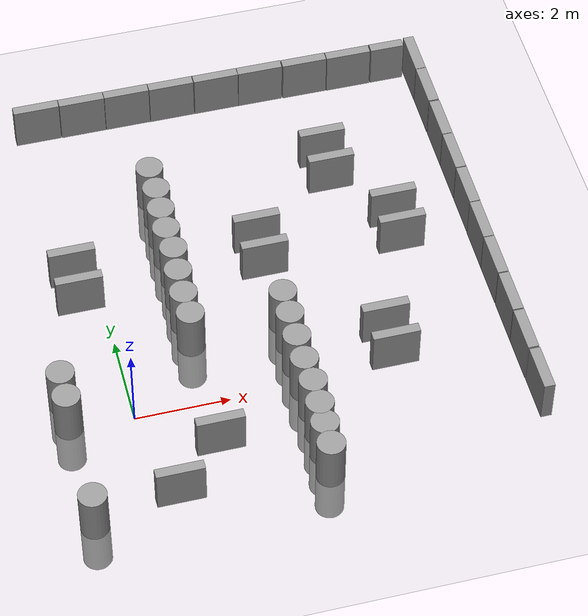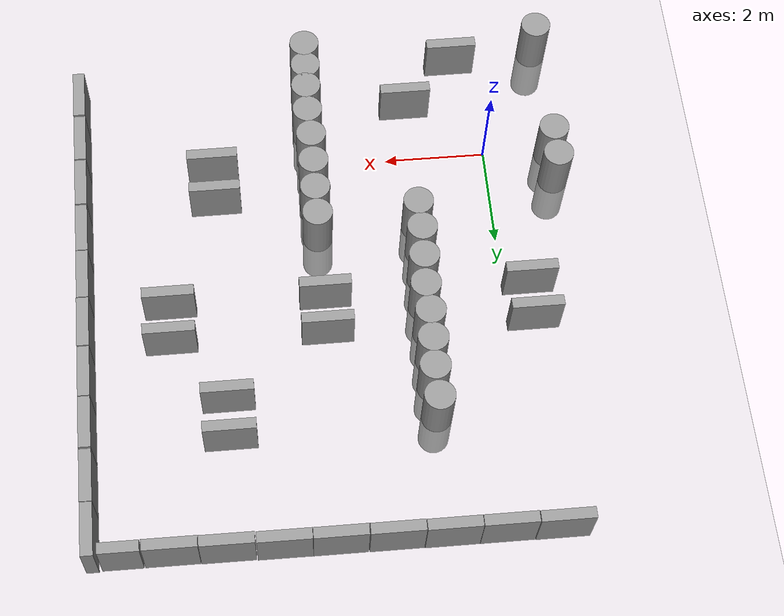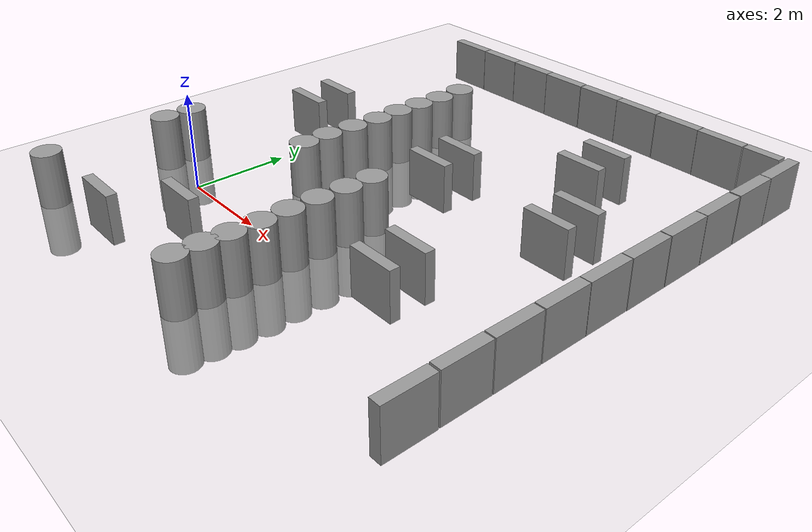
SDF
<sdf version="1.6">
 <world name="default">
  <model name="ground_plane">
   <static>1</static>
   <static>1</static>
   <link name="link">
    <collision name="collision">
     <geometry><plane><normal>0 0 1</normal><size>100 100</size></plane></geometry>
     <surface><friction><ode><mu>100</mu><mu2>50</mu2></ode></friction></surface>
    </collision>
    <visual name="visual">
     <cast_shadows>0</cast_shadows>
     <geometry><plane><normal>0 0 1</normal><size>100 100</size></plane></geometry>
     <material>
      <script><uri>file://media/materials/scripts/gazebo.material</uri><name>Gazebo/Grey</name></script>
     </material>
    </visual>
   </link>
  </model>
  <model name="unit_box_clone_6">
   <pose>-0.418678 8.11866 0.5 0 -0 0.000212</pose>
   <link name="link">
    <inertial>
     <mass>1</mass>
     <inertia>
      <ixx>0.166667</ixx>
      <ixy>0</ixy>
      <ixz>0</ixz>
      <iyy>0.166667</iyy>
      <iyz>0</iyz>
      <izz>0.166667</izz>
     </inertia>
    </inertial>
    <collision name="collision"><geometry><box><size>1 0.210541 1</size></box></geometry></collision>
    <visual name="visual">
     <geometry><box><size>1 0.210541 1</size></box></geometry>
     <material>
      <script><name>Gazebo/Grey</name><uri>file://media/materials/scripts/gazebo.material</uri></script>
     </material>
    </visual>
   </link>
  </model>
  <model name="unit_box_clone_7">
   <pose>0.592841 8.11153 0.5 0 -0 0.000212</pose>
   <link name="link">
    <inertial>
     <mass>1</mass>
     <inertia>
      <ixx>0.166667</ixx>
      <ixy>0</ixy>
      <ixz>0</ixz>
      <iyy>0.166667</iyy>
      <iyz>0</iyz>
      <izz>0.166667</izz>
     </inertia>
    </inertial>
    <collision name="collision"><geometry><box><size>1 0.210541 1</size></box></geometry></collision>
    <visual name="visual">
     <geometry><box><size>1 0.210541 1</size></box></geometry>
     <material>
      <script><name>Gazebo/Grey</name><uri>file://media/materials/scripts/gazebo.material</uri></script>
     </material>
    </visual>
   </link>
  </model>
  <model name="unit_box_clone_8">
   <pose>1.60043 8.11004 0.5 0 -0 0.000212</pose>
   <link name="link">
    <inertial>
     <mass>1</mass>
     <inertia>
      <ixx>0.166667</ixx>
      <ixy>0</ixy>
      <ixz>0</ixz>
      <iyy>0.166667</iyy>
      <iyz>0</iyz>
      <izz>0.166667</izz>
     </inertia>
    </inertial>
    <collision name="collision"><geometry><box><size>1 0.210541 1</size></box></geometry></collision>
    <visual name="visual">
     <geometry><box><size>1 0.210541 1</size></box></geometry>
     <material>
      <script><name>Gazebo/Grey</name><uri>file://media/materials/scripts/gazebo.material</uri></script>
     </material>
    </visual>
   </link>
  </model>
  <model name="unit_box_clone_9">
   <pose>2.60987 8.10285 0.5 0 -0 0.000212</pose>
   <link name="link">
    <inertial>
     <mass>1</mass>
     <inertia>
      <ixx>0.166667</ixx>
      <ixy>0</ixy>
      <ixz>0</ixz>
      <iyy>0.166667</iyy>
      <iyz>0</iyz>
      <izz>0.166667</izz>
     </inertia>
    </inertial>
    <collision name="collision"><geometry><box><size>1 0.210541 1</size></box></geometry></collision>
    <visual name="visual">
     <geometry><box><size>1 0.210541 1</size></box></geometry>
     <material>
      <script><name>Gazebo/Grey</name><uri>file://media/materials/scripts/gazebo.material</uri></script>
     </material>
    </visual>
   </link>
  </model>
  <model name="unit_box_clone_10">
   <pose>3.62649 8.09926 0.5 0 -0 0.000212</pose>
   <link name="link">
    <inertial>
     <mass>1</mass>
     <inertia>
      <ixx>0.166667</ixx>
      <ixy>0</ixy>
      <ixz>0</ixz>
      <iyy>0.166667</iyy>
      <iyz>0</iyz>
      <izz>0.166667</izz>
     </inertia>
    </inertial>
    <collision name="collision"><geometry><box><size>1 0.210541 1</size></box></geometry></collision>
    <visual name="visual">
     <geometry><box><size>1 0.210541 1</size></box></geometry>
     <material>
      <script><name>Gazebo/Grey</name><uri>file://media/materials/scripts/gazebo.material</uri></script>
     </material>
    </visual>
   </link>
  </model>
  <model name="unit_box_clone_11">
   <pose>4.6331 8.09534 0.5 -0 -0 -0.002941</pose>
   <link name="link">
    <inertial>
     <mass>1</mass>
     <inertia>
      <ixx>0.166667</ixx>
      <ixy>0</ixy>
      <ixz>0</ixz>
      <iyy>0.166667</iyy>
      <iyz>0</iyz>
      <izz>0.166667</izz>
     </inertia>
    </inertial>
    <collision name="collision"><geometry><box><size>1 0.210541 1</size></box></geometry></collision>
    <visual name="visual">
     <geometry><box><size>1 0.210541 1</size></box></geometry>
     <material>
      <script><name>Gazebo/Grey</name><uri>file://media/materials/scripts/gazebo.material</uri></script>
     </material>
    </visual>
   </link>
  </model>
  <model name="unit_box_0_clone_0">
   <pose>8.11522 6.68459 0.5 -0 -0 -0.000409</pose>
   <link name="link">
    <inertial>
     <mass>1</mass>
     <inertia>
      <ixx>0.166667</ixx>
      <ixy>0</ixy>
      <ixz>0</ixz>
      <iyy>0.166667</iyy>
      <iyz>0</iyz>
      <izz>0.166667</izz>
     </inertia>
    </inertial>
    <collision name="collision"><geometry><box><size>0.230819 1 1</size></box></geometry></collision>
    <visual name="visual">
     <geometry><box><size>0.230819 1 1</size></box></geometry>
     <material>
      <script><name>Gazebo/Grey</name><uri>file://media/materials/scripts/gazebo.material</uri></script>
     </material>
    </visual>
   </link>
  </model>
  <model name="unit_box_0_clone_1">
   <pose>8.11915 5.6517 0.5 0 -0 0.000288</pose>
   <link name="link">
    <inertial>
     <mass>1</mass>
     <inertia>
      <ixx>0.166667</ixx>
      <ixy>0</ixy>
      <ixz>0</ixz>
      <iyy>0.166667</iyy>
      <iyz>0</iyz>
      <izz>0.166667</izz>
     </inertia>
    </inertial>
    <collision name="collision"><geometry><box><size>0.230819 1 1</size></box></geometry></collision>
    <visual name="visual">
     <geometry><box><size>0.230819 1 1</size></box></geometry>
     <material>
      <script><name>Gazebo/Grey</name><uri>file://media/materials/scripts/gazebo.material</uri></script>
     </material>
    </visual>
   </link>
  </model>
  <model name="unit_box_0_clone_2">
   <pose>8.11914 4.64016 0.5 0 -0 0.000304</pose>
   <link name="link">
    <inertial>
     <mass>1</mass>
     <inertia>
      <ixx>0.166667</ixx>
      <ixy>0</ixy>
      <ixz>0</ixz>
      <iyy>0.166667</iyy>
      <iyz>0</iyz>
      <izz>0.166667</izz>
     </inertia>
    </inertial>
    <collision name="collision"><geometry><box><size>0.230819 1 1</size></box></geometry></collision>
    <visual name="visual">
     <geometry><box><size>0.230819 1 1</size></box></geometry>
     <material>
      <script><name>Gazebo/Grey</name><uri>file://media/materials/scripts/gazebo.material</uri></script>
     </material>
    </visual>
   </link>
  </model>
  <model name="unit_box_0_clone_3">
   <pose>8.11914 3.62226 0.5 0 -0 -1.6e-05</pose>
   <link name="link">
    <inertial>
     <mass>1</mass>
     <inertia>
      <ixx>0.166667</ixx>
      <ixy>0</ixy>
      <ixz>0</ixz>
      <iyy>0.166667</iyy>
      <iyz>0</iyz>
      <izz>0.166667</izz>
     </inertia>
    </inertial>
    <collision name="collision"><geometry><box><size>0.230819 1 1</size></box></geometry></collision>
    <visual name="visual">
     <geometry><box><size>0.230819 1 1</size></box></geometry>
     <material>
      <script><name>Gazebo/Grey</name><uri>file://media/materials/scripts/gazebo.material</uri></script>
     </material>
    </visual>
   </link>
  </model>
  <model name="unit_box_0_clone_4">
   <pose>8.11332 2.61062 0.5 0 0 -0.001482</pose>
   <link name="link">
    <inertial>
     <mass>1</mass>
     <inertia>
      <ixx>0.166667</ixx>
      <ixy>0</ixy>
      <ixz>0</ixz>
      <iyy>0.166667</iyy>
      <iyz>0</iyz>
      <izz>0.166667</izz>
     </inertia>
    </inertial>
    <collision name="collision"><geometry><box><size>0.230819 1 1</size></box></geometry></collision>
    <visual name="visual">
     <geometry><box><size>0.230819 1 1</size></box></geometry>
     <material>
      <script><name>Gazebo/Grey</name><uri>file://media/materials/scripts/gazebo.material</uri></script>
     </material>
    </visual>
   </link>
  </model>
  <model name="unit_box_0_clone_5">
   <pose>8.11277 1.59919 0.5 0 -0 -1.6e-05</pose>
   <link name="link">
    <inertial>
     <mass>1</mass>
     <inertia>
      <ixx>0.166667</ixx>
      <ixy>0</ixy>
      <ixz>0</ixz>
      <iyy>0.166667</iyy>
      <iyz>0</iyz>
      <izz>0.166667</izz>
     </inertia>
    </inertial>
    <collision name="collision"><geometry><box><size>0.230819 1 1</size></box></geometry></collision>
    <visual name="visual">
     <geometry><box><size>0.230819 1 1</size></box></geometry>
     <material>
      <script><name>Gazebo/Grey</name><uri>file://media/materials/scripts/gazebo.material</uri></script>
     </material>
    </visual>
   </link>
  </model>
  <model name="unit_box_0_clone_6">
   <pose>8.11277 0.574929 0.5 0 -0 -1.6e-05</pose>
   <link name="link">
    <inertial>
     <mass>1</mass>
     <inertia>
      <ixx>0.166667</ixx>
      <ixy>0</ixy>
      <ixz>0</ixz>
      <iyy>0.166667</iyy>
      <iyz>0</iyz>
      <izz>0.166667</izz>
     </inertia>
    </inertial>
    <collision name="collision"><geometry><box><size>0.230819 1 1</size></box></geometry></collision>
    <visual name="visual">
     <geometry><box><size>0.230819 1 1</size></box></geometry>
     <material>
      <script><name>Gazebo/Grey</name><uri>file://media/materials/scripts/gazebo.material</uri></script>
     </material>
    </visual>
   </link>
  </model>
  <model name="unit_box_0_clone_7">
   <pose>8.11276 -0.449329 0.5 0 -0 -1.6e-05</pose>
   <link name="link">
    <inertial>
     <mass>1</mass>
     <inertia>
      <ixx>0.166667</ixx>
      <ixy>0</ixy>
      <ixz>0</ixz>
      <iyy>0.166667</iyy>
      <iyz>0</iyz>
      <izz>0.166667</izz>
     </inertia>
    </inertial>
    <collision name="collision"><geometry><box><size>0.230819 1 1</size></box></geometry></collision>
    <visual name="visual">
     <geometry><box><size>0.230819 1 1</size></box></geometry>
     <material>
      <script><name>Gazebo/Grey</name><uri>file://media/materials/scripts/gazebo.material</uri></script>
     </material>
    </visual>
   </link>
  </model>
  <model name="unit_box_0_clone_8">
   <pose>8.11912 -1.48631 0.5 0 -0 -1.6e-05</pose>
   <link name="link">
    <inertial>
     <mass>1</mass>
     <inertia>
      <ixx>0.166667</ixx>
      <ixy>0</ixy>
      <ixz>0</ixz>
      <iyy>0.166667</iyy>
      <iyz>0</iyz>
      <izz>0.166667</izz>
     </inertia>
    </inertial>
    <collision name="collision"><geometry><box><size>0.230819 1 1</size></box></geometry></collision>
    <visual name="visual">
     <geometry><box><size>0.230819 1 1</size></box></geometry>
     <material>
      <script><name>Gazebo/Grey</name><uri>file://media/materials/scripts/gazebo.material</uri></script>
     </material>
    </visual>
   </link>
  </model>
  <model name="unit_box_0_clone_0_clone">
   <pose>8.11438 7.69322 0.5 0 -0 0.00027</pose>
   <link name="link">
    <inertial>
     <mass>1</mass>
     <inertia>
      <ixx>0.166667</ixx>
      <ixy>0</ixy>
      <ixz>0</ixz>
      <iyy>0.166667</iyy>
      <iyz>0</iyz>
      <izz>0.166667</izz>
     </inertia>
    </inertial>
    <collision name="collision"><geometry><box><size>0.230819 1 1</size></box></geometry></collision>
    <visual name="visual">
     <geometry><box><size>0.230819 1 1</size></box></geometry>
     <material>
      <script><name>Gazebo/Grey</name><uri>file://media/materials/scripts/gazebo.material</uri></script>
     </material>
    </visual>
   </link>
  </model>
  <model name="unit_box_clone_11_clone">
   <pose>5.65439 8.08313 0.5 -0 -0 -0.003132</pose>
   <link name="link">
    <inertial>
     <mass>1</mass>
     <inertia>
      <ixx>0.166667</ixx>
      <ixy>0</ixy>
      <ixz>0</ixz>
      <iyy>0.166667</iyy>
      <iyz>0</iyz>
      <izz>0.166667</izz>
     </inertia>
    </inertial>
    <collision name="collision"><geometry><box><size>1 0.210541 1</size></box></geometry></collision>
    <visual name="visual">
     <geometry><box><size>1 0.210541 1</size></box></geometry>
     <material>
      <script><name>Gazebo/Grey</name><uri>file://media/materials/scripts/gazebo.material</uri></script>
     </material>
    </visual>
   </link>
  </model>
  <model name="unit_box_clone_11_clone_0">
   <pose>6.66439 8.07334 0.5 0 0 -0.002912</pose>
   <link name="link">
    <inertial>
     <mass>1</mass>
     <inertia>
      <ixx>0.166667</ixx>
      <ixy>0</ixy>
      <ixz>0</ixz>
      <iyy>0.166667</iyy>
      <iyz>0</iyz>
      <izz>0.166667</izz>
     </inertia>
    </inertial>
    <collision name="collision"><geometry><box><size>1 0.210541 1</size></box></geometry></collision>
    <visual name="visual">
     <geometry><box><size>1 0.210541 1</size></box></geometry>
     <material>
      <script><name>Gazebo/Grey</name><uri>file://media/materials/scripts/gazebo.material</uri></script>
     </material>
    </visual>
   </link>
  </model>
  <model name="unit_box_clone_11_clone_1_clone">
   <pose>7.56437 8.07322 0.499997 -2e-06 -7e-06 -0.00342</pose>
   <link name="link">
    <inertial>
     <mass>1</mass>
     <inertia>
      <ixx>0.166667</ixx>
      <ixy>0</ixy>
      <ixz>0</ixz>
      <iyy>0.166667</iyy>
      <iyz>0</iyz>
      <izz>0.166667</izz>
     </inertia>
    </inertial>
    <collision name="collision"><geometry><box><size>0.750223 0.210541 1</size></box></geometry></collision>
    <visual name="visual">
     <geometry><box><size>0.750223 0.210541 1</size></box></geometry>
     <material>
      <script><name>Gazebo/Grey</name><uri>file://media/materials/scripts/gazebo.material</uri></script>
     </material>
    </visual>
   </link>
  </model>
  <model name="unit_cylinder_153_clone_clone_5_clone_clone_13_clone_0_clone_29_clone_32_clone_0_clone_4_clone_46_clone_42_clone_clone_clone_4_clone_2_clone_29_clone">
   <static>1</static>
   <pose>-1.33788 0.711735 0 0 -0 0</pose>
   <link name="link">
    <inertial>
     <mass>1</mass>
     <inertia><ixx>0.145833</ixx><ixy>0</ixy><ixz>0</ixz><iyy>0.145833</iyy><iyz>0</iyz><izz>0.125</izz></inertia>
    </inertial>
    <collision name="collision">
     <geometry><cylinder><radius>0.295479</radius><length>2.18667</length></cylinder></geometry>
    </collision>
    <visual name="visual">
     <geometry><cylinder><radius>0.295479</radius><length>2.18667</length></cylinder></geometry>
     <material>
      <script><name>Gazebo/Grey</name><uri>file://media/materials/scripts/gazebo.material</uri></script>
     </material>
    </visual>
   </link>
  </model>
  <model name="unit_cylinder_153_clone_clone_5_clone_clone_13_clone_0_clone_29_clone_32_clone_0_clone_4_clone_46_clone_42_clone_clone_clone_4_clone_2_clone_29_clone_0">
   <static>1</static>
   <pose>-1.33788 0.103789 0 0 -0 0</pose>
   <link name="link">
    <inertial>
     <mass>1</mass>
     <inertia><ixx>0.145833</ixx><ixy>0</ixy><ixz>0</ixz><iyy>0.145833</iyy><iyz>0</iyz><izz>0.125</izz></inertia>
    </inertial>
    <collision name="collision">
     <geometry><cylinder><radius>0.295479</radius><length>2.18667</length></cylinder></geometry>
    </collision>
    <visual name="visual">
     <geometry><cylinder><radius>0.295479</radius><length>2.18667</length></cylinder></geometry>
     <material>
      <script><name>Gazebo/Grey</name><uri>file://media/materials/scripts/gazebo.material</uri></script>
     </material>
    </visual>
   </link>
  </model>
  <model name="unit_cylinder_153_clone_clone_5_clone_clone_13_clone_0_clone_29_clone_32_clone_0_clone_4_clone_46_clone_42_clone_clone_clone_4_clone_2_clone_29_clone_4">
   <static>1</static>
   <pose>-1.31809 -2.38905 0 0 -0 0</pose>
   <link name="link">
    <inertial>
     <mass>1</mass>
     <inertia><ixx>0.145833</ixx><ixy>0</ixy><ixz>0</ixz><iyy>0.145833</iyy><iyz>0</iyz><izz>0.125</izz></inertia>
    </inertial>
    <collision name="collision">
     <geometry><cylinder><radius>0.295479</radius><length>2.18667</length></cylinder></geometry>
    </collision>
    <visual name="visual">
     <geometry><cylinder><radius>0.295479</radius><length>2.18667</length></cylinder></geometry>
     <material>
      <script><name>Gazebo/Grey</name><uri>file://media/materials/scripts/gazebo.material</uri></script>
     </material>
    </visual>
   </link>
  </model>
  <model name="unit_cylinder_153_clone_clone_5_clone_clone_13_clone_0_clone_29_clone_32_clone_0_clone_4_clone_46_clone_42_clone_clone_clone_4_clone_2_clone_29_clone_10">
   <static>1</static>
   <pose>1.60145 5.68902 0 0 -0 0</pose>
   <link name="link">
    <inertial>
     <mass>1</mass>
     <inertia><ixx>0.145833</ixx><ixy>0</ixy><ixz>0</ixz><iyy>0.145833</iyy><iyz>0</iyz><izz>0.125</izz></inertia>
    </inertial>
    <collision name="collision">
     <geometry><cylinder><radius>0.295479</radius><length>2.18667</length></cylinder></geometry>
    </collision>
    <visual name="visual">
     <geometry><cylinder><radius>0.295479</radius><length>2.18667</length></cylinder></geometry>
     <material>
      <script><name>Gazebo/Grey</name><uri>file://media/materials/scripts/gazebo.material</uri></script>
     </material>
    </visual>
   </link>
  </model>
  <model name="unit_cylinder_153_clone_clone_5_clone_clone_13_clone_0_clone_29_clone_32_clone_0_clone_4_clone_46_clone_42_clone_clone_clone_4_clone_2_clone_29_clone_11">
   <static>1</static>
   <pose>1.61502 5.07811 0 0 -0 0</pose>
   <link name="link">
    <inertial>
     <mass>1</mass>
     <inertia><ixx>0.145833</ixx><ixy>0</ixy><ixz>0</ixz><iyy>0.145833</iyy><iyz>0</iyz><izz>0.125</izz></inertia>
    </inertial>
    <collision name="collision">
     <geometry><cylinder><radius>0.295479</radius><length>2.18667</length></cylinder></geometry>
    </collision>
    <visual name="visual">
     <geometry><cylinder><radius>0.295479</radius><length>2.18667</length></cylinder></geometry>
     <material>
      <script><name>Gazebo/Grey</name><uri>file://media/materials/scripts/gazebo.material</uri></script>
     </material>
    </visual>
   </link>
  </model>
  <model name="unit_cylinder_153_clone_clone_5_clone_clone_13_clone_0_clone_29_clone_32_clone_0_clone_4_clone_46_clone_42_clone_clone_clone_4_clone_2_clone_29_clone_12">
   <static>1</static>
   <pose>1.58787 4.50793 0 0 -0 0</pose>
   <link name="link">
    <inertial>
     <mass>1</mass>
     <inertia><ixx>0.145833</ixx><ixy>0</ixy><ixz>0</ixz><iyy>0.145833</iyy><iyz>0</iyz><izz>0.125</izz></inertia>
    </inertial>
    <collision name="collision">
     <geometry><cylinder><radius>0.295479</radius><length>2.18667</length></cylinder></geometry>
    </collision>
    <visual name="visual">
     <geometry><cylinder><radius>0.295479</radius><length>2.18667</length></cylinder></geometry>
     <material>
      <script><name>Gazebo/Grey</name><uri>file://media/materials/scripts/gazebo.material</uri></script>
     </material>
    </visual>
   </link>
  </model>
  <model name="unit_cylinder_153_clone_clone_5_clone_clone_13_clone_0_clone_29_clone_32_clone_0_clone_4_clone_46_clone_42_clone_clone_clone_4_clone_2_clone_29_clone_13">
   <static>1</static>
   <pose>1.57429 3.93776 0 0 -0 0</pose>
   <link name="link">
    <inertial>
     <mass>1</mass>
     <inertia><ixx>0.145833</ixx><ixy>0</ixy><ixz>0</ixz><iyy>0.145833</iyy><iyz>0</iyz><izz>0.125</izz></inertia>
    </inertial>
    <collision name="collision">
     <geometry><cylinder><radius>0.295479</radius><length>2.18667</length></cylinder></geometry>
    </collision>
    <visual name="visual">
     <geometry><cylinder><radius>0.295479</radius><length>2.18667</length></cylinder></geometry>
     <material>
      <script><name>Gazebo/Grey</name><uri>file://media/materials/scripts/gazebo.material</uri></script>
     </material>
    </visual>
   </link>
  </model>
  <model name="unit_cylinder_153_clone_clone_5_clone_clone_13_clone_0_clone_29_clone_32_clone_0_clone_4_clone_46_clone_42_clone_clone_clone_4_clone_2_clone_29_clone_14">
   <static>1</static>
   <pose>1.60144 3.36758 0 0 -0 0</pose>
   <link name="link">
    <inertial>
     <mass>1</mass>
     <inertia><ixx>0.145833</ixx><ixy>0</ixy><ixz>0</ixz><iyy>0.145833</iyy><iyz>0</iyz><izz>0.125</izz></inertia>
    </inertial>
    <collision name="collision">
     <geometry><cylinder><radius>0.295479</radius><length>2.18667</length></cylinder></geometry>
    </collision>
    <visual name="visual">
     <geometry><cylinder><radius>0.295479</radius><length>2.18667</length></cylinder></geometry>
     <material>
      <script><name>Gazebo/Grey</name><uri>file://media/materials/scripts/gazebo.material</uri></script>
     </material>
    </visual>
   </link>
  </model>
  <model name="unit_cylinder_153_clone_clone_5_clone_clone_13_clone_0_clone_29_clone_32_clone_0_clone_4_clone_46_clone_42_clone_clone_clone_4_clone_2_clone_29_clone_15">
   <static>1</static>
   <pose>1.56071 2.75667 0 0 -0 0</pose>
   <link name="link">
    <inertial>
     <mass>1</mass>
     <inertia><ixx>0.145833</ixx><ixy>0</ixy><ixz>0</ixz><iyy>0.145833</iyy><iyz>0</iyz><izz>0.125</izz></inertia>
    </inertial>
    <collision name="collision">
     <geometry><cylinder><radius>0.295479</radius><length>2.18667</length></cylinder></geometry>
    </collision>
    <visual name="visual">
     <geometry><cylinder><radius>0.295479</radius><length>2.18667</length></cylinder></geometry>
     <material>
      <script><name>Gazebo/Grey</name><uri>file://media/materials/scripts/gazebo.material</uri></script>
     </material>
    </visual>
   </link>
  </model>
  <model name="unit_cylinder_153_clone_clone_5_clone_clone_13_clone_0_clone_29_clone_32_clone_0_clone_4_clone_46_clone_42_clone_clone_clone_4_clone_2_clone_29_clone_16">
   <static>1</static>
   <pose>1.53355 2.14576 0 0 -0 0</pose>
   <link name="link">
    <inertial>
     <mass>1</mass>
     <inertia><ixx>0.145833</ixx><ixy>0</ixy><ixz>0</ixz><iyy>0.145833</iyy><iyz>0</iyz><izz>0.125</izz></inertia>
    </inertial>
    <collision name="collision">
     <geometry><cylinder><radius>0.295479</radius><length>2.18667</length></cylinder></geometry>
    </collision>
    <visual name="visual">
     <geometry><cylinder><radius>0.295479</radius><length>2.18667</length></cylinder></geometry>
     <material>
      <script><name>Gazebo/Grey</name><uri>file://media/materials/scripts/gazebo.material</uri></script>
     </material>
    </visual>
   </link>
  </model>
  <model name="unit_cylinder_153_clone_clone_5_clone_clone_13_clone_0_clone_29_clone_32_clone_0_clone_4_clone_46_clone_42_clone_clone_clone_4_clone_2_clone_29_clone_17">
   <static>1</static>
   <pose>1.54713 1.57559 0 0 -0 0</pose>
   <link name="link">
    <inertial>
     <mass>1</mass>
     <inertia><ixx>0.145833</ixx><ixy>0</ixy><ixz>0</ixz><iyy>0.145833</iyy><iyz>0</iyz><izz>0.125</izz></inertia>
    </inertial>
    <collision name="collision">
     <geometry><cylinder><radius>0.295479</radius><length>2.18667</length></cylinder></geometry>
    </collision>
    <visual name="visual">
     <geometry><cylinder><radius>0.295479</radius><length>2.18667</length></cylinder></geometry>
     <material>
      <script><name>Gazebo/Grey</name><uri>file://media/materials/scripts/gazebo.material</uri></script>
     </material>
    </visual>
   </link>
  </model>
  <model name="unit_cylinder_153_clone_clone_5_clone_clone_13_clone_0_clone_29_clone_32_clone_0_clone_4_clone_46_clone_42_clone_clone_clone_4_clone_2_clone_29_clone_18">
   <static>1</static>
   <pose>3.52918 1.6706 0 0 -0 0</pose>
   <link name="link">
    <inertial>
     <mass>1</mass>
     <inertia><ixx>0.145833</ixx><ixy>0</ixy><ixz>0</ixz><iyy>0.145833</iyy><iyz>0</iyz><izz>0.125</izz></inertia>
    </inertial>
    <collision name="collision">
     <geometry><cylinder><radius>0.295479</radius><length>2.18667</length></cylinder></geometry>
    </collision>
    <visual name="visual">
     <geometry><cylinder><radius>0.295479</radius><length>2.18667</length></cylinder></geometry>
     <material>
      <script><name>Gazebo/Grey</name><uri>file://media/materials/scripts/gazebo.material</uri></script>
     </material>
    </visual>
   </link>
  </model>
  <model name="unit_cylinder_153_clone_clone_5_clone_clone_13_clone_0_clone_29_clone_32_clone_0_clone_4_clone_46_clone_42_clone_clone_clone_4_clone_2_clone_29_clone_19">
   <static>1</static>
   <pose>3.52917 1.08685 0 0 -0 0</pose>
   <link name="link">
    <inertial>
     <mass>1</mass>
     <inertia><ixx>0.145833</ixx><ixy>0</ixy><ixz>0</ixz><iyy>0.145833</iyy><iyz>0</iyz><izz>0.125</izz></inertia>
    </inertial>
    <collision name="collision">
     <geometry><cylinder><radius>0.295479</radius><length>2.18667</length></cylinder></geometry>
    </collision>
    <visual name="visual">
     <geometry><cylinder><radius>0.295479</radius><length>2.18667</length></cylinder></geometry>
     <material>
      <script><name>Gazebo/Grey</name><uri>file://media/materials/scripts/gazebo.material</uri></script>
     </material>
    </visual>
   </link>
  </model>
  <model name="unit_cylinder_153_clone_clone_5_clone_clone_13_clone_0_clone_29_clone_32_clone_0_clone_4_clone_46_clone_42_clone_clone_clone_4_clone_2_clone_29_clone_20">
   <static>1</static>
   <pose>3.51559 0.475946 0 0 -0 0</pose>
   <link name="link">
    <inertial>
     <mass>1</mass>
     <inertia><ixx>0.145833</ixx><ixy>0</ixy><ixz>0</ixz><iyy>0.145833</iyy><iyz>0</iyz><izz>0.125</izz></inertia>
    </inertial>
    <collision name="collision">
     <geometry><cylinder><radius>0.295479</radius><length>2.18667</length></cylinder></geometry>
    </collision>
    <visual name="visual">
     <geometry><cylinder><radius>0.295479</radius><length>2.18667</length></cylinder></geometry>
     <material>
      <script><name>Gazebo/Grey</name><uri>file://media/materials/scripts/gazebo.material</uri></script>
     </material>
    </visual>
   </link>
  </model>
  <model name="unit_cylinder_153_clone_clone_5_clone_clone_13_clone_0_clone_29_clone_32_clone_0_clone_4_clone_46_clone_42_clone_clone_clone_4_clone_2_clone_29_clone_21">
   <static>1</static>
   <pose>3.51559 -0.13496 0 0 -0 0</pose>
   <link name="link">
    <inertial>
     <mass>1</mass>
     <inertia><ixx>0.145833</ixx><ixy>0</ixy><ixz>0</ixz><iyy>0.145833</iyy><iyz>0</iyz><izz>0.125</izz></inertia>
    </inertial>
    <collision name="collision">
     <geometry><cylinder><radius>0.295479</radius><length>2.18667</length></cylinder></geometry>
    </collision>
    <visual name="visual">
     <geometry><cylinder><radius>0.295479</radius><length>2.18667</length></cylinder></geometry>
     <material>
      <script><name>Gazebo/Grey</name><uri>file://media/materials/scripts/gazebo.material</uri></script>
     </material>
    </visual>
   </link>
  </model>
  <model name="unit_cylinder_153_clone_clone_5_clone_clone_13_clone_0_clone_29_clone_32_clone_0_clone_4_clone_46_clone_42_clone_clone_clone_4_clone_2_clone_29_clone_22">
   <static>1</static>
   <pose>3.54274 -0.718716 0 0 -0 0</pose>
   <link name="link">
    <inertial>
     <mass>1</mass>
     <inertia><ixx>0.145833</ixx><ixy>0</ixy><ixz>0</ixz><iyy>0.145833</iyy><iyz>0</iyz><izz>0.125</izz></inertia>
    </inertial>
    <collision name="collision">
     <geometry><cylinder><radius>0.295479</radius><length>2.18667</length></cylinder></geometry>
    </collision>
    <visual name="visual">
     <geometry><cylinder><radius>0.295479</radius><length>2.18667</length></cylinder></geometry>
     <material>
      <script><name>Gazebo/Grey</name><uri>file://media/materials/scripts/gazebo.material</uri></script>
     </material>
    </visual>
   </link>
  </model>
  <model name="unit_cylinder_153_clone_clone_5_clone_clone_13_clone_0_clone_29_clone_32_clone_0_clone_4_clone_46_clone_42_clone_clone_clone_4_clone_2_clone_29_clone_23">
   <static>1</static>
   <pose>3.52916 -1.28889 0 0 -0 0</pose>
   <link name="link">
    <inertial>
     <mass>1</mass>
     <inertia><ixx>0.145833</ixx><ixy>0</ixy><ixz>0</ixz><iyy>0.145833</iyy><iyz>0</iyz><izz>0.125</izz></inertia>
    </inertial>
    <collision name="collision">
     <geometry><cylinder><radius>0.295479</radius><length>2.18667</length></cylinder></geometry>
    </collision>
    <visual name="visual">
     <geometry><cylinder><radius>0.295479</radius><length>2.18667</length></cylinder></geometry>
     <material>
      <script><name>Gazebo/Grey</name><uri>file://media/materials/scripts/gazebo.material</uri></script>
     </material>
    </visual>
   </link>
  </model>
  <model name="unit_cylinder_153_clone_clone_5_clone_clone_13_clone_0_clone_29_clone_32_clone_0_clone_4_clone_46_clone_42_clone_clone_clone_4_clone_2_clone_29_clone_24">
   <static>1</static>
   <pose>3.50201 -1.79119 0 0 -0 0</pose>
   <link name="link">
    <inertial>
     <mass>1</mass>
     <inertia><ixx>0.145833</ixx><ixy>0</ixy><ixz>0</ixz><iyy>0.145833</iyy><iyz>0</iyz><izz>0.125</izz></inertia>
    </inertial>
    <collision name="collision">
     <geometry><cylinder><radius>0.295479</radius><length>2.18667</length></cylinder></geometry>
    </collision>
    <visual name="visual">
     <geometry><cylinder><radius>0.295479</radius><length>2.18667</length></cylinder></geometry>
     <material>
      <script><name>Gazebo/Grey</name><uri>file://media/materials/scripts/gazebo.material</uri></script>
     </material>
    </visual>
   </link>
  </model>
  <model name="unit_cylinder_153_clone_clone_5_clone_clone_13_clone_0_clone_29_clone_32_clone_0_clone_4_clone_46_clone_42_clone_clone_clone_4_clone_2_clone_29_clone_25">
   <static>1</static>
   <pose>3.48843 -2.32064 0 0 -0 0</pose>
   <link name="link">
    <inertial>
     <mass>1</mass>
     <inertia><ixx>0.145833</ixx><ixy>0</ixy><ixz>0</ixz><iyy>0.145833</iyy><iyz>0</iyz><izz>0.125</izz></inertia>
    </inertial>
    <collision name="collision">
     <geometry><cylinder><radius>0.295479</radius><length>2.18667</length></cylinder></geometry>
    </collision>
    <visual name="visual">
     <geometry><cylinder><radius>0.295479</radius><length>2.18667</length></cylinder></geometry>
     <material>
      <script><name>Gazebo/Grey</name><uri>file://media/materials/scripts/gazebo.material</uri></script>
     </material>
    </visual>
   </link>
  </model>
  <model name="unit_box_clone_9_clone">
   <pose>1.52688 -1.11946 0.5 0 -0 0.00013</pose>
   <link name="link">
    <inertial>
     <mass>1</mass>
     <inertia>
      <ixx>0.166667</ixx>
      <ixy>0</ixy>
      <ixz>0</ixz>
      <iyy>0.166667</iyy>
      <iyz>0</iyz>
      <izz>0.166667</izz>
     </inertia>
    </inertial>
    <collision name="collision"><geometry><box><size>1 0.210541 1</size></box></geometry></collision>
    <visual name="visual">
     <geometry><box><size>1 0.210541 1</size></box></geometry>
     <material>
      <script><name>Gazebo/Grey</name><uri>file://media/materials/scripts/gazebo.material</uri></script>
     </material>
    </visual>
   </link>
  </model>
  <model name="unit_box_clone_9_clone_0">
   <pose>0.472108 -2.14463 0.5 0 -0 0.000116</pose>
   <link name="link">
    <inertial>
     <mass>1</mass>
     <inertia>
      <ixx>0.166667</ixx>
      <ixy>0</ixy>
      <ixz>0</ixz>
      <iyy>0.166667</iyy>
      <iyz>0</iyz>
      <izz>0.166667</izz>
     </inertia>
    </inertial>
    <collision name="collision"><geometry><box><size>1 0.210541 1</size></box></geometry></collision>
    <visual name="visual">
     <geometry><box><size>1 0.210541 1</size></box></geometry>
     <material>
      <script><name>Gazebo/Grey</name><uri>file://media/materials/scripts/gazebo.material</uri></script>
     </material>
    </visual>
   </link>
  </model>
  <model name="unit_box_clone_9_clone_1">
   <pose>-0.478638 3.90178 0.5 0 -0 0.000111</pose>
   <link name="link">
    <inertial>
     <mass>1</mass>
     <inertia>
      <ixx>0.166667</ixx>
      <ixy>0</ixy>
      <ixz>0</ixz>
      <iyy>0.166667</iyy>
      <iyz>0</iyz>
      <izz>0.166667</izz>
     </inertia>
    </inertial>
    <collision name="collision"><geometry><box><size>1 0.210541 1</size></box></geometry></collision>
    <visual name="visual">
     <geometry><box><size>1 0.210541 1</size></box></geometry>
     <material>
      <script><name>Gazebo/Grey</name><uri>file://media/materials/scripts/gazebo.material</uri></script>
     </material>
    </visual>
   </link>
  </model>
  <model name="unit_box_clone_9_clone_3">
   <pose>5.49016 5.92736 0.5 0 -0 0.000204</pose>
   <link name="link">
    <inertial>
     <mass>1</mass>
     <inertia>
      <ixx>0.166667</ixx>
      <ixy>0</ixy>
      <ixz>0</ixz>
      <iyy>0.166667</iyy>
      <iyz>0</iyz>
      <izz>0.166667</izz>
     </inertia>
    </inertial>
    <collision name="collision"><geometry><box><size>1 0.210541 1</size></box></geometry></collision>
    <visual name="visual">
     <geometry><box><size>1 0.210541 1</size></box></geometry>
     <material>
      <script><name>Gazebo/Grey</name><uri>file://media/materials/scripts/gazebo.material</uri></script>
     </material>
    </visual>
   </link>
  </model>
  <model name="unit_box_clone_9_clone_4">
   <pose>5.49015 5.15671 0.5 0 -0 0.000302</pose>
   <link name="link">
    <inertial>
     <mass>1</mass>
     <inertia>
      <ixx>0.166667</ixx>
      <ixy>0</ixy>
      <ixz>0</ixz>
      <iyy>0.166667</iyy>
      <iyz>0</iyz>
      <izz>0.166667</izz>
     </inertia>
    </inertial>
    <collision name="collision"><geometry><box><size>1 0.210541 1</size></box></geometry></collision>
    <visual name="visual">
     <geometry><box><size>1 0.210541 1</size></box></geometry>
     <material>
      <script><name>Gazebo/Grey</name><uri>file://media/materials/scripts/gazebo.material</uri></script>
     </material>
    </visual>
   </link>
  </model>
  <model name="unit_box_clone_9_clone_5">
   <pose>6.51762 3.87229 0.499999 1e-06 2e-06 0.000169</pose>
   <link name="link">
    <inertial>
     <mass>1</mass>
     <inertia>
      <ixx>0.166667</ixx>
      <ixy>0</ixy>
      <ixz>0</ixz>
      <iyy>0.166667</iyy>
      <iyz>0</iyz>
      <izz>0.166667</izz>
     </inertia>
    </inertial>
    <collision name="collision"><geometry><box><size>1 0.210541 1</size></box></geometry></collision>
    <visual name="visual">
     <geometry><box><size>1 0.210541 1</size></box></geometry>
     <material>
      <script><name>Gazebo/Grey</name><uri>file://media/materials/scripts/gazebo.material</uri></script>
     </material>
    </visual>
   </link>
  </model>
  <model name="unit_box_clone_9_clone_6">
   <pose>6.50478 3.11454 0.5 0 -0 0.000185</pose>
   <link name="link">
    <inertial>
     <mass>1</mass>
     <inertia>
      <ixx>0.166667</ixx>
      <ixy>0</ixy>
      <ixz>0</ixz>
      <iyy>0.166667</iyy>
      <iyz>0</iyz>
      <izz>0.166667</izz>
     </inertia>
    </inertial>
    <collision name="collision"><geometry><box><size>1 0.210541 1</size></box></geometry></collision>
    <visual name="visual">
     <geometry><box><size>1 0.210541 1</size></box></geometry>
     <material>
      <script><name>Gazebo/Grey</name><uri>file://media/materials/scripts/gazebo.material</uri></script>
     </material>
    </visual>
   </link>
  </model>
  <model name="unit_box_clone_9_clone_7">
   <pose>5.50298 0.867022 0.5 0 -0 0.000208</pose>
   <link name="link">
    <inertial>
     <mass>1</mass>
     <inertia>
      <ixx>0.166667</ixx>
      <ixy>0</ixy>
      <ixz>0</ixz>
      <iyy>0.166667</iyy>
      <iyz>0</iyz>
      <izz>0.166667</izz>
     </inertia>
    </inertial>
    <collision name="collision"><geometry><box><size>1 0.210541 1</size></box></geometry></collision>
    <visual name="visual">
     <geometry><box><size>1 0.210541 1</size></box></geometry>
     <material>
      <script><name>Gazebo/Grey</name><uri>file://media/materials/scripts/gazebo.material</uri></script>
     </material>
    </visual>
   </link>
  </model>
  <model name="unit_box_clone_9_clone_8">
   <pose>5.51582 0.122037 0.5 0 -0 0.000292</pose>
   <link name="link">
    <inertial>
     <mass>1</mass>
     <inertia>
      <ixx>0.166667</ixx>
      <ixy>0</ixy>
      <ixz>0</ixz>
      <iyy>0.166667</iyy>
      <iyz>0</iyz>
      <izz>0.166667</izz>
     </inertia>
    </inertial>
    <collision name="collision"><geometry><box><size>1 0.210541 1</size></box></geometry></collision>
    <visual name="visual">
     <geometry><box><size>1 0.210541 1</size></box></geometry>
     <material>
      <script><name>Gazebo/Grey</name><uri>file://media/materials/scripts/gazebo.material</uri></script>
     </material>
    </visual>
   </link>
  </model>
  <model name="unit_box_clone_9_clone_9">
   <pose>3.51226 3.88525 0.5 0 -0 0.000121</pose>
   <link name="link">
    <inertial>
     <mass>1</mass>
     <inertia>
      <ixx>0.166667</ixx>
      <ixy>0</ixy>
      <ixz>0</ixz>
      <iyy>0.166667</iyy>
      <iyz>0</iyz>
      <izz>0.166667</izz>
     </inertia>
    </inertial>
    <collision name="collision"><geometry><box><size>1 0.210541 1</size></box></geometry></collision>
    <visual name="visual">
     <geometry><box><size>1 0.210541 1</size></box></geometry>
     <material>
      <script><name>Gazebo/Grey</name><uri>file://media/materials/scripts/gazebo.material</uri></script>
     </material>
    </visual>
   </link>
  </model>
  <model name="unit_box_clone_9_clone_10">
   <pose>3.49941 3.12746 0.5 0 -0 0.000131</pose>
   <link name="link">
    <inertial>
     <mass>1</mass>
     <inertia>
      <ixx>0.166667</ixx>
      <ixy>0</ixy>
      <ixz>0</ixz>
      <iyy>0.166667</iyy>
      <iyz>0</iyz>
      <izz>0.166667</izz>
     </inertia>
    </inertial>
    <collision name="collision"><geometry><box><size>1 0.210541 1</size></box></geometry></collision>
    <visual name="visual">
     <geometry><box><size>1 0.210541 1</size></box></geometry>
     <material>
      <script><name>Gazebo/Grey</name><uri>file://media/materials/scripts/gazebo.material</uri></script>
     </material>
    </visual>
   </link>
  </model>
  <model name="unit_box_clone_9_clone_13">
   <pose>-0.477835 3.12219 0.5 0 -0 0.000212</pose>
   <link name="link">
    <inertial>
     <mass>1</mass>
     <inertia>
      <ixx>0.166667</ixx>
      <ixy>0</ixy>
      <ixz>0</ixz>
      <iyy>0.166667</iyy>
      <iyz>0</iyz>
      <izz>0.166667</izz>
     </inertia>
    </inertial>
    <collision name="collision"><geometry><box><size>1 0.210541 1</size></box></geometry></collision>
    <visual name="visual">
     <geometry><box><size>1 0.210541 1</size></box></geometry>
     <material>
      <script><name>Gazebo/Grey</name><uri>file://media/materials/scripts/gazebo.material</uri></script>
     </material>
    </visual>
   </link>
  </model>
 </world>
</sdf>
